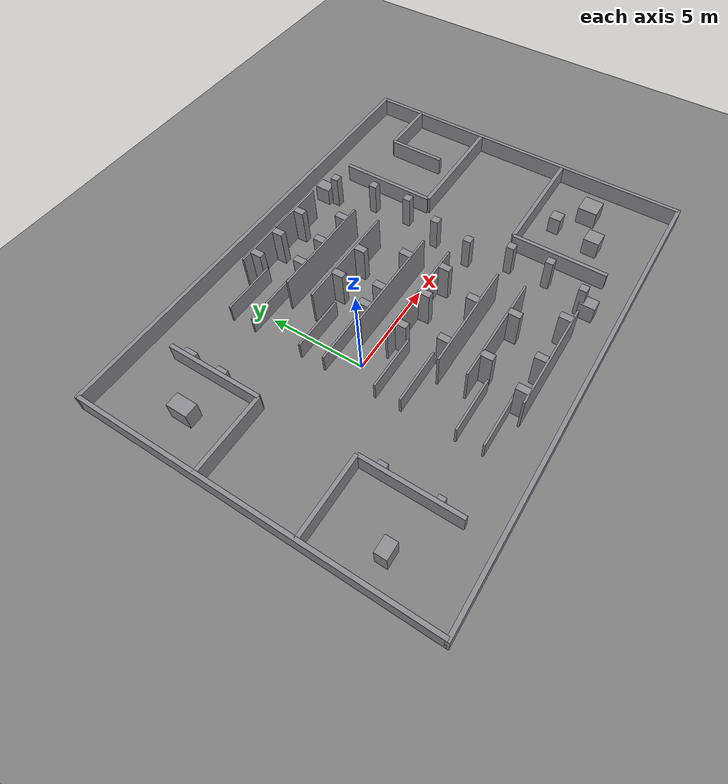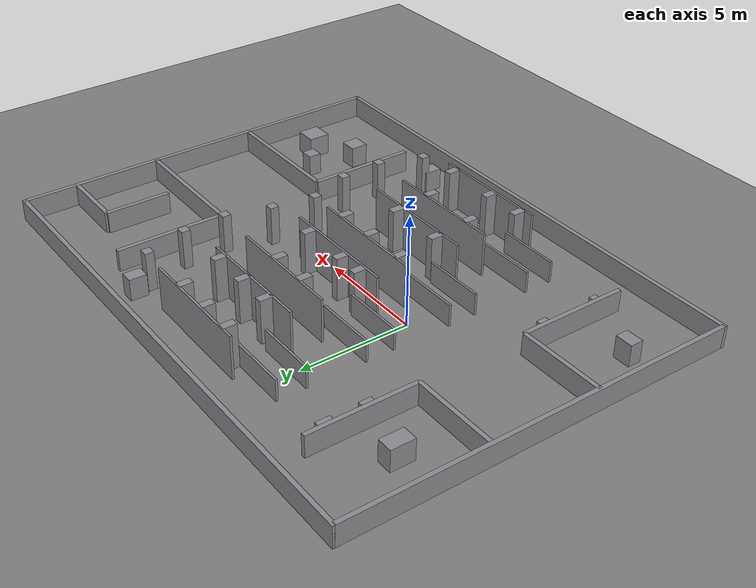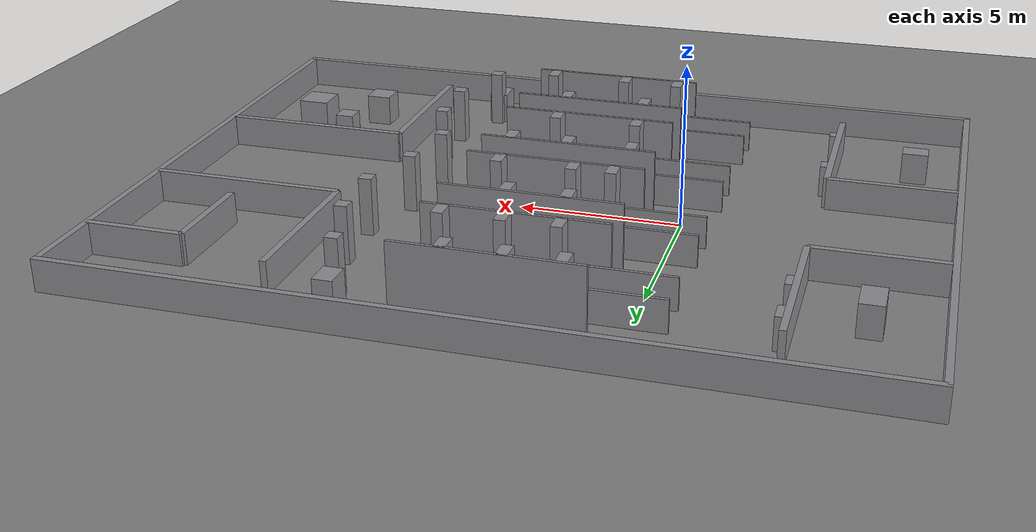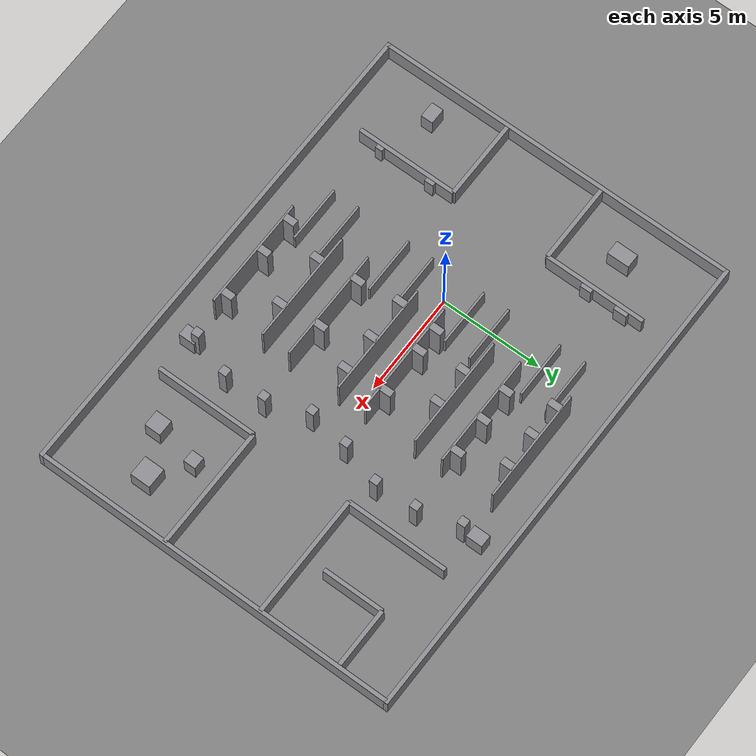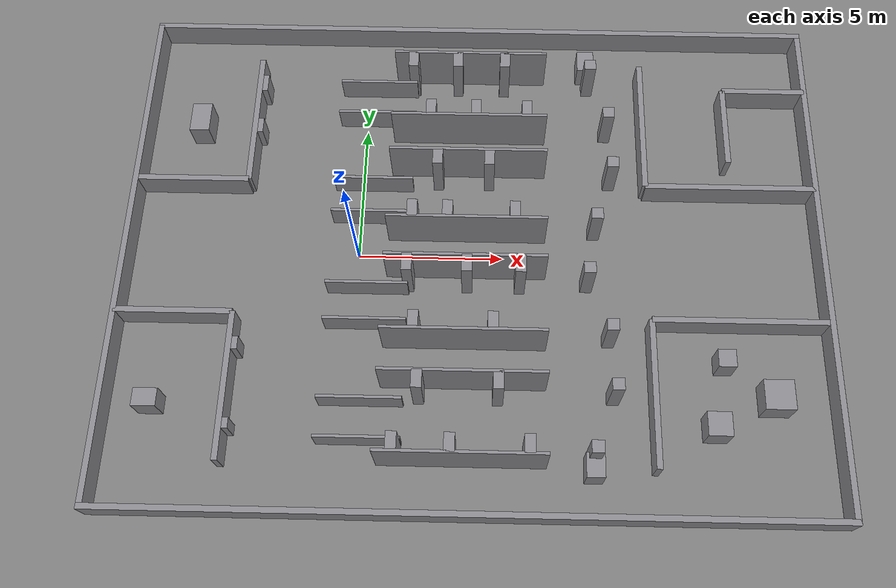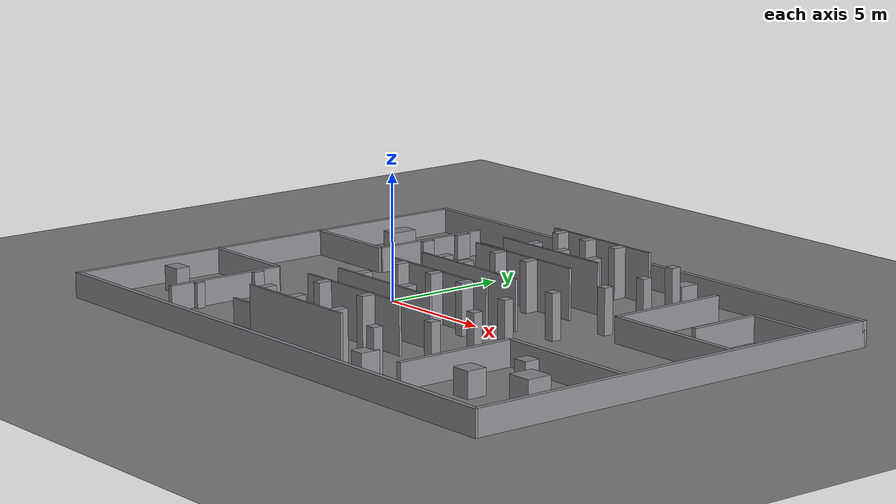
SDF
<?xml version='1.0' encoding='utf-8'?>
<sdf version="1.8">
  <world name="coco_world">
    <physics name="default_physics" type="dart">
      <max_step_size>0.002</max_step_size>
      <real_time_factor>1.0</real_time_factor>
    </physics>
    <gravity>0 0 -9.8</gravity>
    <plugin filename="gz-sim-physics-system" name="gz::sim::systems::Physics" />
    <plugin filename="gz-sim-user-commands-system" name="gz::sim::systems::UserCommands" />
    <plugin filename="gz-sim-scene-broadcaster-system" name="gz::sim::systems::SceneBroadcaster" />
    <plugin filename="gz-sim-sensors-system" name="gz::sim::systems::Sensors">
      <render_engine>ogre2</render_engine>
    </plugin>
    <plugin filename="gz-sim-imu-system" name="gz::sim::systems::Imu" />
    <light name="sun" type="directional">
      <cast_shadows>true</cast_shadows>
      <pose>0 0 10 0 0 0</pose>
      <diffuse>0.9 0.9 0.9 1</diffuse>
      <specular>0.3 0.3 0.3 1</specular>
      <direction>-0.5 0.1 -0.9</direction>
    </light>
    <light name="fill" type="directional">
      <cast_shadows>false</cast_shadows>
      <pose>0 0 5 0 0 0</pose>
      <diffuse>0.4 0.4 0.4 1</diffuse>
      <direction>0.5 -0.1 -0.9</direction>
    </light>
    <model name="ground_plane">
      <static>true</static>
      <link name="link">
        <collision name="collision">
          <geometry>
            <plane>
              <normal>0 0 1</normal>
              <size>60 60</size>
            </plane>
          </geometry>
          <surface>
            <friction>
              <ode>
                <mu>1.0</mu>
                <mu2>1.0</mu2>
              </ode>
            </friction>
          </surface>
        </collision>
        <visual name="visual">
          <geometry>
            <plane>
              <normal>0 0 1</normal>
              <size>60 60</size>
            </plane>
          </geometry>
          <material>
            <ambient>0.5 0.5 0.5 1</ambient>
            <diffuse>0.5 0.5 0.5 1</diffuse>
          </material>
        </visual>
      </link>
    </model>
    <scene>
      <ambient>0.4 0.4 0.4 1</ambient>
      <background>0.53 0.81 0.92 1</background>
      <shadows>true</shadows>
    </scene>
    <model name="wall_north">
      <static>true</static>
      <pose>4 9 0.5 0 0 0</pose>
      <link name="link">
        <collision name="collision">
          <geometry>
            <box>
              <size>24.2 0.2 1</size>
            </box>
          </geometry>
        </collision>
        <visual name="visual">
          <geometry>
            <box>
              <size>24.2 0.2 1</size>
            </box>
          </geometry>
          <material>
            <ambient>0.55 0.55 0.57 1</ambient>
            <diffuse>0.55 0.55 0.57 1</diffuse>
          </material>
        </visual>
      </link>
    </model>
    <model name="wall_south">
      <static>true</static>
      <pose>4 -9 0.5 0 0 0</pose>
      <link name="link">
        <collision name="collision">
          <geometry>
            <box>
              <size>24.2 0.2 1</size>
            </box>
          </geometry>
        </collision>
        <visual name="visual">
          <geometry>
            <box>
              <size>24.2 0.2 1</size>
            </box>
          </geometry>
          <material>
            <ambient>0.55 0.55 0.57 1</ambient>
            <diffuse>0.55 0.55 0.57 1</diffuse>
          </material>
        </visual>
      </link>
    </model>
    <model name="wall_west">
      <static>true</static>
      <pose>-8 0 0.5 0 0 0</pose>
      <link name="link">
        <collision name="collision">
          <geometry>
            <box>
              <size>0.2 18 1</size>
            </box>
          </geometry>
        </collision>
        <visual name="visual">
          <geometry>
            <box>
              <size>0.2 18 1</size>
            </box>
          </geometry>
          <material>
            <ambient>0.55 0.55 0.57 1</ambient>
            <diffuse>0.55 0.55 0.57 1</diffuse>
          </material>
        </visual>
      </link>
    </model>
    <model name="wall_east">
      <static>true</static>
      <pose>16 0 0.5 0 0 0</pose>
      <link name="link">
        <collision name="collision">
          <geometry>
            <box>
              <size>0.2 18 1</size>
            </box>
          </geometry>
        </collision>
        <visual name="visual">
          <geometry>
            <box>
              <size>0.2 18 1</size>
            </box>
          </geometry>
          <material>
            <ambient>0.55 0.55 0.57 1</ambient>
            <diffuse>0.55 0.55 0.57 1</diffuse>
          </material>
        </visual>
      </link>
    </model>
    <model name="west_spine_south">
      <static>true</static>
      <pose>-4 -5 0.5 0 0 0</pose>
      <link name="link">
        <collision name="collision">
          <geometry>
            <box>
              <size>0.2 5 1</size>
            </box>
          </geometry>
        </collision>
        <visual name="visual">
          <geometry>
            <box>
              <size>0.2 5 1</size>
            </box>
          </geometry>
          <material>
            <ambient>0.55 0.55 0.57 1</ambient>
            <diffuse>0.55 0.55 0.57 1</diffuse>
          </material>
        </visual>
      </link>
    </model>
    <model name="west_spine_north">
      <static>true</static>
      <pose>-4 5 0.5 0 0 0</pose>
      <link name="link">
        <collision name="collision">
          <geometry>
            <box>
              <size>0.2 5 1</size>
            </box>
          </geometry>
        </collision>
        <visual name="visual">
          <geometry>
            <box>
              <size>0.2 5 1</size>
            </box>
          </geometry>
          <material>
            <ambient>0.55 0.55 0.57 1</ambient>
            <diffuse>0.55 0.55 0.57 1</diffuse>
          </material>
        </visual>
      </link>
    </model>
    <model name="west_room_south">
      <static>true</static>
      <pose>-6 -2.5 0.5 0 0 0</pose>
      <link name="link">
        <collision name="collision">
          <geometry>
            <box>
              <size>4 0.2 1</size>
            </box>
          </geometry>
        </collision>
        <visual name="visual">
          <geometry>
            <box>
              <size>4 0.2 1</size>
            </box>
          </geometry>
          <material>
            <ambient>0.55 0.55 0.57 1</ambient>
            <diffuse>0.55 0.55 0.57 1</diffuse>
          </material>
        </visual>
      </link>
    </model>
    <model name="west_room_north">
      <static>true</static>
      <pose>-6 2.5 0.5 0 0 0</pose>
      <link name="link">
        <collision name="collision">
          <geometry>
            <box>
              <size>4 0.2 1</size>
            </box>
          </geometry>
        </collision>
        <visual name="visual">
          <geometry>
            <box>
              <size>4 0.2 1</size>
            </box>
          </geometry>
          <material>
            <ambient>0.55 0.55 0.57 1</ambient>
            <diffuse>0.55 0.55 0.57 1</diffuse>
          </material>
        </visual>
      </link>
    </model>
    <model name="east_spine_south">
      <static>true</static>
      <pose>10 -5 0.5 0 0 0</pose>
      <link name="link">
        <collision name="collision">
          <geometry>
            <box>
              <size>0.2 5 1</size>
            </box>
          </geometry>
        </collision>
        <visual name="visual">
          <geometry>
            <box>
              <size>0.2 5 1</size>
            </box>
          </geometry>
          <material>
            <ambient>0.55 0.55 0.57 1</ambient>
            <diffuse>0.55 0.55 0.57 1</diffuse>
          </material>
        </visual>
      </link>
    </model>
    <model name="east_spine_north">
      <static>true</static>
      <pose>10 5 0.5 0 0 0</pose>
      <link name="link">
        <collision name="collision">
          <geometry>
            <box>
              <size>0.2 5 1</size>
            </box>
          </geometry>
        </collision>
        <visual name="visual">
          <geometry>
            <box>
              <size>0.2 5 1</size>
            </box>
          </geometry>
          <material>
            <ambient>0.55 0.55 0.57 1</ambient>
            <diffuse>0.55 0.55 0.57 1</diffuse>
          </material>
        </visual>
      </link>
    </model>
    <model name="east_room_south">
      <static>true</static>
      <pose>13 -2.5 0.5 0 0 0</pose>
      <link name="link">
        <collision name="collision">
          <geometry>
            <box>
              <size>6 0.2 1</size>
            </box>
          </geometry>
        </collision>
        <visual name="visual">
          <geometry>
            <box>
              <size>6 0.2 1</size>
            </box>
          </geometry>
          <material>
            <ambient>0.55 0.55 0.57 1</ambient>
            <diffuse>0.55 0.55 0.57 1</diffuse>
          </material>
        </visual>
      </link>
    </model>
    <model name="east_room_north">
      <static>true</static>
      <pose>13 2.5 0.5 0 0 0</pose>
      <link name="link">
        <collision name="collision">
          <geometry>
            <box>
              <size>6 0.2 1</size>
            </box>
          </geometry>
        </collision>
        <visual name="visual">
          <geometry>
            <box>
              <size>6 0.2 1</size>
            </box>
          </geometry>
          <material>
            <ambient>0.55 0.55 0.57 1</ambient>
            <diffuse>0.55 0.55 0.57 1</diffuse>
          </material>
        </visual>
      </link>
    </model>
    <model name="east_dead_end_side">
      <static>true</static>
      <pose>13 5 0.5 0 0 0</pose>
      <link name="link">
        <collision name="collision">
          <geometry>
            <box>
              <size>0.2 3 1</size>
            </box>
          </geometry>
        </collision>
        <visual name="visual">
          <geometry>
            <box>
              <size>0.2 3 1</size>
            </box>
          </geometry>
          <material>
            <ambient>0.55 0.55 0.57 1</ambient>
            <diffuse>0.55 0.55 0.57 1</diffuse>
          </material>
        </visual>
      </link>
    </model>
    <model name="east_dead_end_cap">
      <static>true</static>
      <pose>14.5 6.5 0.5 0 0 0</pose>
      <link name="link">
        <collision name="collision">
          <geometry>
            <box>
              <size>3 0.2 1</size>
            </box>
          </geometry>
        </collision>
        <visual name="visual">
          <geometry>
            <box>
              <size>3 0.2 1</size>
            </box>
          </geometry>
          <material>
            <ambient>0.55 0.55 0.57 1</ambient>
            <diffuse>0.55 0.55 0.57 1</diffuse>
          </material>
        </visual>
      </link>
    </model>
    <model name="cluster_a">
      <static>true</static>
      <pose>12 -6 0.5 0 0 0</pose>
      <link name="link">
        <collision name="collision">
          <geometry>
            <box>
              <size>0.8 0.8 1</size>
            </box>
          </geometry>
        </collision>
        <visual name="visual">
          <geometry>
            <box>
              <size>0.8 0.8 1</size>
            </box>
          </geometry>
          <material>
            <ambient>0.55 0.55 0.57 1</ambient>
            <diffuse>0.55 0.55 0.57 1</diffuse>
          </material>
        </visual>
      </link>
    </model>
    <model name="cluster_b">
      <static>true</static>
      <pose>14 -5 0.5 0 0 0</pose>
      <link name="link">
        <collision name="collision">
          <geometry>
            <box>
              <size>1 1 1</size>
            </box>
          </geometry>
        </collision>
        <visual name="visual">
          <geometry>
            <box>
              <size>1 1 1</size>
            </box>
          </geometry>
          <material>
            <ambient>0.55 0.55 0.57 1</ambient>
            <diffuse>0.55 0.55 0.57 1</diffuse>
          </material>
        </visual>
      </link>
    </model>
    <model name="cluster_c">
      <static>true</static>
      <pose>12.4 -3.8 0.5 0 0 0</pose>
      <link name="link">
        <collision name="collision">
          <geometry>
            <box>
              <size>0.6 0.6 1</size>
            </box>
          </geometry>
        </collision>
        <visual name="visual">
          <geometry>
            <box>
              <size>0.6 0.6 1</size>
            </box>
          </geometry>
          <material>
            <ambient>0.55 0.55 0.57 1</ambient>
            <diffuse>0.55 0.55 0.57 1</diffuse>
          </material>
        </visual>
      </link>
    </model>
    <model name="offset_north">
      <static>true</static>
      <pose>8 7.7 0.5 0 0 0</pose>
      <link name="link">
        <collision name="collision">
          <geometry>
            <box>
              <size>0.6 0.8 1</size>
            </box>
          </geometry>
        </collision>
        <visual name="visual">
          <geometry>
            <box>
              <size>0.6 0.8 1</size>
            </box>
          </geometry>
          <material>
            <ambient>0.55 0.55 0.57 1</ambient>
            <diffuse>0.55 0.55 0.57 1</diffuse>
          </material>
        </visual>
      </link>
    </model>
    <model name="offset_south">
      <static>true</static>
      <pose>8 -7.4 0.5 0 0 0</pose>
      <link name="link">
        <collision name="collision">
          <geometry>
            <box>
              <size>0.6 0.8 1</size>
            </box>
          </geometry>
        </collision>
        <visual name="visual">
          <geometry>
            <box>
              <size>0.6 0.8 1</size>
            </box>
          </geometry>
          <material>
            <ambient>0.55 0.55 0.57 1</ambient>
            <diffuse>0.55 0.55 0.57 1</diffuse>
          </material>
        </visual>
      </link>
    </model>
    <model name="west_landmark">
      <static>true</static>
      <pose>-6 5 0.5 0 0 0</pose>
      <link name="link">
        <collision name="collision">
          <geometry>
            <box>
              <size>0.7 1.1 1</size>
            </box>
          </geometry>
        </collision>
        <visual name="visual">
          <geometry>
            <box>
              <size>0.7 1.1 1</size>
            </box>
          </geometry>
          <material>
            <ambient>0.55 0.55 0.57 1</ambient>
            <diffuse>0.55 0.55 0.57 1</diffuse>
          </material>
        </visual>
      </link>
    </model>
    <model name="west_offset">
      <static>true</static>
      <pose>-6.5 -5.5 0.5 0 0 0</pose>
      <link name="link">
        <collision name="collision">
          <geometry>
            <box>
              <size>0.8 0.6 1</size>
            </box>
          </geometry>
        </collision>
        <visual name="visual">
          <geometry>
            <box>
              <size>0.8 0.6 1</size>
            </box>
          </geometry>
          <material>
            <ambient>0.55 0.55 0.57 1</ambient>
            <diffuse>0.55 0.55 0.57 1</diffuse>
          </material>
        </visual>
      </link>
    </model>
    <model name="red_bay_guard_south">
      <static>true</static>
      <pose>3.75 -7.3 1.0 0 0 0</pose>
      <link name="link">
        <collision name="collision">
          <geometry>
            <box>
              <size>5.5 0.1 2.0</size>
            </box>
          </geometry>
        </collision>
        <visual name="visual">
          <geometry>
            <box>
              <size>5.5 0.1 2.0</size>
            </box>
          </geometry>
          <material>
            <ambient>0.55 0.55 0.57 1</ambient>
            <diffuse>0.55 0.55 0.57 1</diffuse>
          </material>
        </visual>
      </link>
    </model>
    <model name="red_bay_guard_north">
      <static>true</static>
      <pose>3.75 -4.7 1.0 0 0 0</pose>
      <link name="link">
        <collision name="collision">
          <geometry>
            <box>
              <size>5.5 0.1 2.0</size>
            </box>
          </geometry>
        </collision>
        <visual name="visual">
          <geometry>
            <box>
              <size>5.5 0.1 2.0</size>
            </box>
          </geometry>
          <material>
            <ambient>0.55 0.55 0.57 1</ambient>
            <diffuse>0.55 0.55 0.57 1</diffuse>
          </material>
        </visual>
      </link>
    </model>
    <model name="green_bay_guard_south">
      <static>true</static>
      <pose>3.75 -3.3 1.0 0 0 0</pose>
      <link name="link">
        <collision name="collision">
          <geometry>
            <box>
              <size>5.5 0.1 2.0</size>
            </box>
          </geometry>
        </collision>
        <visual name="visual">
          <geometry>
            <box>
              <size>5.5 0.1 2.0</size>
            </box>
          </geometry>
          <material>
            <ambient>0.55 0.55 0.57 1</ambient>
            <diffuse>0.55 0.55 0.57 1</diffuse>
          </material>
        </visual>
      </link>
    </model>
    <model name="green_bay_guard_north">
      <static>true</static>
      <pose>3.75 -0.7 1.0 0 0 0</pose>
      <link name="link">
        <collision name="collision">
          <geometry>
            <box>
              <size>5.5 0.1 2.0</size>
            </box>
          </geometry>
        </collision>
        <visual name="visual">
          <geometry>
            <box>
              <size>5.5 0.1 2.0</size>
            </box>
          </geometry>
          <material>
            <ambient>0.55 0.55 0.57 1</ambient>
            <diffuse>0.55 0.55 0.57 1</diffuse>
          </material>
        </visual>
      </link>
    </model>
    <model name="blue_bay_guard_south">
      <static>true</static>
      <pose>3.75 0.7 1.0 0 0 0</pose>
      <link name="link">
        <collision name="collision">
          <geometry>
            <box>
              <size>5.5 0.1 2.0</size>
            </box>
          </geometry>
        </collision>
        <visual name="visual">
          <geometry>
            <box>
              <size>5.5 0.1 2.0</size>
            </box>
          </geometry>
          <material>
            <ambient>0.55 0.55 0.57 1</ambient>
            <diffuse>0.55 0.55 0.57 1</diffuse>
          </material>
        </visual>
      </link>
    </model>
    <model name="blue_bay_guard_north">
      <static>true</static>
      <pose>3.75 3.3 1.0 0 0 0</pose>
      <link name="link">
        <collision name="collision">
          <geometry>
            <box>
              <size>5.5 0.1 2.0</size>
            </box>
          </geometry>
        </collision>
        <visual name="visual">
          <geometry>
            <box>
              <size>5.5 0.1 2.0</size>
            </box>
          </geometry>
          <material>
            <ambient>0.55 0.55 0.57 1</ambient>
            <diffuse>0.55 0.55 0.57 1</diffuse>
          </material>
        </visual>
      </link>
    </model>
    <model name="yellow_bay_guard_south">
      <static>true</static>
      <pose>3.75 4.7 1.0 0 0 0</pose>
      <link name="link">
        <collision name="collision">
          <geometry>
            <box>
              <size>5.5 0.1 2.0</size>
            </box>
          </geometry>
        </collision>
        <visual name="visual">
          <geometry>
            <box>
              <size>5.5 0.1 2.0</size>
            </box>
          </geometry>
          <material>
            <ambient>0.55 0.55 0.57 1</ambient>
            <diffuse>0.55 0.55 0.57 1</diffuse>
          </material>
        </visual>
      </link>
    </model>
    <model name="yellow_bay_guard_north">
      <static>true</static>
      <pose>3.75 7.3 1.0 0 0 0</pose>
      <link name="link">
        <collision name="collision">
          <geometry>
            <box>
              <size>5.5 0.1 2.0</size>
            </box>
          </geometry>
        </collision>
        <visual name="visual">
          <geometry>
            <box>
              <size>5.5 0.1 2.0</size>
            </box>
          </geometry>
          <material>
            <ambient>0.55 0.55 0.57 1</ambient>
            <diffuse>0.55 0.55 0.57 1</diffuse>
          </material>
        </visual>
      </link>
    </model>
    <model name="red_approach_south">
      <static>true</static>
      <pose>0.4 -6.65 0.5 0 0 0</pose>
      <link name="link">
        <collision name="collision">
          <geometry>
            <box>
              <size>2.8 0.1 1</size>
            </box>
          </geometry>
        </collision>
        <visual name="visual">
          <geometry>
            <box>
              <size>2.8 0.1 1</size>
            </box>
          </geometry>
          <material>
            <ambient>0.55 0.55 0.57 1</ambient>
            <diffuse>0.55 0.55 0.57 1</diffuse>
          </material>
        </visual>
      </link>
    </model>
    <model name="red_approach_north">
      <static>true</static>
      <pose>0.4 -5.35 0.5 0 0 0</pose>
      <link name="link">
        <collision name="collision">
          <geometry>
            <box>
              <size>2.8 0.1 1</size>
            </box>
          </geometry>
        </collision>
        <visual name="visual">
          <geometry>
            <box>
              <size>2.8 0.1 1</size>
            </box>
          </geometry>
          <material>
            <ambient>0.55 0.55 0.57 1</ambient>
            <diffuse>0.55 0.55 0.57 1</diffuse>
          </material>
        </visual>
      </link>
    </model>
    <model name="green_approach_south">
      <static>true</static>
      <pose>0.4 -2.65 0.5 0 0 0</pose>
      <link name="link">
        <collision name="collision">
          <geometry>
            <box>
              <size>2.8 0.1 1</size>
            </box>
          </geometry>
        </collision>
        <visual name="visual">
          <geometry>
            <box>
              <size>2.8 0.1 1</size>
            </box>
          </geometry>
          <material>
            <ambient>0.55 0.55 0.57 1</ambient>
            <diffuse>0.55 0.55 0.57 1</diffuse>
          </material>
        </visual>
      </link>
    </model>
    <model name="green_approach_north">
      <static>true</static>
      <pose>0.4 -1.35 0.5 0 0 0</pose>
      <link name="link">
        <collision name="collision">
          <geometry>
            <box>
              <size>2.8 0.1 1</size>
            </box>
          </geometry>
        </collision>
        <visual name="visual">
          <geometry>
            <box>
              <size>2.8 0.1 1</size>
            </box>
          </geometry>
          <material>
            <ambient>0.55 0.55 0.57 1</ambient>
            <diffuse>0.55 0.55 0.57 1</diffuse>
          </material>
        </visual>
      </link>
    </model>
    <model name="blue_approach_south">
      <static>true</static>
      <pose>0.4 1.35 0.5 0 0 0</pose>
      <link name="link">
        <collision name="collision">
          <geometry>
            <box>
              <size>2.8 0.1 1</size>
            </box>
          </geometry>
        </collision>
        <visual name="visual">
          <geometry>
            <box>
              <size>2.8 0.1 1</size>
            </box>
          </geometry>
          <material>
            <ambient>0.55 0.55 0.57 1</ambient>
            <diffuse>0.55 0.55 0.57 1</diffuse>
          </material>
        </visual>
      </link>
    </model>
    <model name="blue_approach_north">
      <static>true</static>
      <pose>0.4 2.65 0.5 0 0 0</pose>
      <link name="link">
        <collision name="collision">
          <geometry>
            <box>
              <size>2.8 0.1 1</size>
            </box>
          </geometry>
        </collision>
        <visual name="visual">
          <geometry>
            <box>
              <size>2.8 0.1 1</size>
            </box>
          </geometry>
          <material>
            <ambient>0.55 0.55 0.57 1</ambient>
            <diffuse>0.55 0.55 0.57 1</diffuse>
          </material>
        </visual>
      </link>
    </model>
    <model name="yellow_approach_south">
      <static>true</static>
      <pose>0.4 5.35 0.5 0 0 0</pose>
      <link name="link">
        <collision name="collision">
          <geometry>
            <box>
              <size>2.8 0.1 1</size>
            </box>
          </geometry>
        </collision>
        <visual name="visual">
          <geometry>
            <box>
              <size>2.8 0.1 1</size>
            </box>
          </geometry>
          <material>
            <ambient>0.55 0.55 0.57 1</ambient>
            <diffuse>0.55 0.55 0.57 1</diffuse>
          </material>
        </visual>
      </link>
    </model>
    <model name="yellow_approach_north">
      <static>true</static>
      <pose>0.4 6.65 0.5 0 0 0</pose>
      <link name="link">
        <collision name="collision">
          <geometry>
            <box>
              <size>2.8 0.1 1</size>
            </box>
          </geometry>
        </collision>
        <visual name="visual">
          <geometry>
            <box>
              <size>2.8 0.1 1</size>
            </box>
          </geometry>
          <material>
            <ambient>0.55 0.55 0.57 1</ambient>
            <diffuse>0.55 0.55 0.57 1</diffuse>
          </material>
        </visual>
      </link>
    </model>
    <model name="west_corridor_landmark_0">
      <static>true</static>
      <pose>-3.8 -6.3 0.5 0 0 0</pose>
      <link name="link">
        <collision name="collision">
          <geometry>
            <box>
              <size>0.2 0.35 1</size>
            </box>
          </geometry>
        </collision>
        <visual name="visual">
          <geometry>
            <box>
              <size>0.2 0.35 1</size>
            </box>
          </geometry>
          <material>
            <ambient>0.55 0.55 0.57 1</ambient>
            <diffuse>0.55 0.55 0.57 1</diffuse>
          </material>
        </visual>
      </link>
    </model>
    <model name="west_corridor_landmark_1">
      <static>true</static>
      <pose>-3.8 -3.6 0.5 0 0 0</pose>
      <link name="link">
        <collision name="collision">
          <geometry>
            <box>
              <size>0.2 0.44999999999999996 1</size>
            </box>
          </geometry>
        </collision>
        <visual name="visual">
          <geometry>
            <box>
              <size>0.2 0.44999999999999996 1</size>
            </box>
          </geometry>
          <material>
            <ambient>0.55 0.55 0.57 1</ambient>
            <diffuse>0.55 0.55 0.57 1</diffuse>
          </material>
        </visual>
      </link>
    </model>
    <model name="west_corridor_landmark_2">
      <static>true</static>
      <pose>-3.8 4.7 0.5 0 0 0</pose>
      <link name="link">
        <collision name="collision">
          <geometry>
            <box>
              <size>0.2 0.55 1</size>
            </box>
          </geometry>
        </collision>
        <visual name="visual">
          <geometry>
            <box>
              <size>0.2 0.55 1</size>
            </box>
          </geometry>
          <material>
            <ambient>0.55 0.55 0.57 1</ambient>
            <diffuse>0.55 0.55 0.57 1</diffuse>
          </material>
        </visual>
      </link>
    </model>
    <model name="west_corridor_landmark_3">
      <static>true</static>
      <pose>-3.8 6.5 0.5 0 0 0</pose>
      <link name="link">
        <collision name="collision">
          <geometry>
            <box>
              <size>0.2 0.65 1</size>
            </box>
          </geometry>
        </collision>
        <visual name="visual">
          <geometry>
            <box>
              <size>0.2 0.65 1</size>
            </box>
          </geometry>
          <material>
            <ambient>0.55 0.55 0.57 1</ambient>
            <diffuse>0.55 0.55 0.57 1</diffuse>
          </material>
        </visual>
      </link>
    </model>
    <model name="red_bay_landmark_south_0">
      <static>true</static>
      <pose>1.6 -7.0 1.0 0 0 0</pose>
      <link name="link">
        <collision name="collision">
          <geometry>
            <box>
              <size>0.35 0.6 2.0</size>
            </box>
          </geometry>
        </collision>
        <visual name="visual">
          <geometry>
            <box>
              <size>0.35 0.6 2.0</size>
            </box>
          </geometry>
          <material>
            <ambient>0.55 0.55 0.57 1</ambient>
            <diffuse>0.55 0.55 0.57 1</diffuse>
          </material>
        </visual>
      </link>
    </model>
    <model name="red_bay_landmark_south_1">
      <static>true</static>
      <pose>3.4 -7.0 1.0 0 0 0</pose>
      <link name="link">
        <collision name="collision">
          <geometry>
            <box>
              <size>0.35 0.6 2.0</size>
            </box>
          </geometry>
        </collision>
        <visual name="visual">
          <geometry>
            <box>
              <size>0.35 0.6 2.0</size>
            </box>
          </geometry>
          <material>
            <ambient>0.55 0.55 0.57 1</ambient>
            <diffuse>0.55 0.55 0.57 1</diffuse>
          </material>
        </visual>
      </link>
    </model>
    <model name="red_bay_landmark_south_2">
      <static>true</static>
      <pose>5.9 -7.0 1.0 0 0 0</pose>
      <link name="link">
        <collision name="collision">
          <geometry>
            <box>
              <size>0.35 0.6 2.0</size>
            </box>
          </geometry>
        </collision>
        <visual name="visual">
          <geometry>
            <box>
              <size>0.35 0.6 2.0</size>
            </box>
          </geometry>
          <material>
            <ambient>0.55 0.55 0.57 1</ambient>
            <diffuse>0.55 0.55 0.57 1</diffuse>
          </material>
        </visual>
      </link>
    </model>
    <model name="red_bay_landmark_north_0">
      <static>true</static>
      <pose>2.3 -5.0 1.0 0 0 0</pose>
      <link name="link">
        <collision name="collision">
          <geometry>
            <box>
              <size>0.35 0.6 2.0</size>
            </box>
          </geometry>
        </collision>
        <visual name="visual">
          <geometry>
            <box>
              <size>0.35 0.6 2.0</size>
            </box>
          </geometry>
          <material>
            <ambient>0.55 0.55 0.57 1</ambient>
            <diffuse>0.55 0.55 0.57 1</diffuse>
          </material>
        </visual>
      </link>
    </model>
    <model name="red_bay_landmark_north_1">
      <static>true</static>
      <pose>4.9 -5.0 1.0 0 0 0</pose>
      <link name="link">
        <collision name="collision">
          <geometry>
            <box>
              <size>0.35 0.6 2.0</size>
            </box>
          </geometry>
        </collision>
        <visual name="visual">
          <geometry>
            <box>
              <size>0.35 0.6 2.0</size>
            </box>
          </geometry>
          <material>
            <ambient>0.55 0.55 0.57 1</ambient>
            <diffuse>0.55 0.55 0.57 1</diffuse>
          </material>
        </visual>
      </link>
    </model>
    <model name="green_bay_landmark_south_0">
      <static>true</static>
      <pose>2.1 -3.0 1.0 0 0 0</pose>
      <link name="link">
        <collision name="collision">
          <geometry>
            <box>
              <size>0.35 0.6 2.0</size>
            </box>
          </geometry>
        </collision>
        <visual name="visual">
          <geometry>
            <box>
              <size>0.35 0.6 2.0</size>
            </box>
          </geometry>
          <material>
            <ambient>0.55 0.55 0.57 1</ambient>
            <diffuse>0.55 0.55 0.57 1</diffuse>
          </material>
        </visual>
      </link>
    </model>
    <model name="green_bay_landmark_south_1">
      <static>true</static>
      <pose>4.7 -3.0 1.0 0 0 0</pose>
      <link name="link">
        <collision name="collision">
          <geometry>
            <box>
              <size>0.35 0.6 2.0</size>
            </box>
          </geometry>
        </collision>
        <visual name="visual">
          <geometry>
            <box>
              <size>0.35 0.6 2.0</size>
            </box>
          </geometry>
          <material>
            <ambient>0.55 0.55 0.57 1</ambient>
            <diffuse>0.55 0.55 0.57 1</diffuse>
          </material>
        </visual>
      </link>
    </model>
    <model name="green_bay_landmark_north_0">
      <static>true</static>
      <pose>1.8 -1.0 1.0 0 0 0</pose>
      <link name="link">
        <collision name="collision">
          <geometry>
            <box>
              <size>0.35 0.6 2.0</size>
            </box>
          </geometry>
        </collision>
        <visual name="visual">
          <geometry>
            <box>
              <size>0.35 0.6 2.0</size>
            </box>
          </geometry>
          <material>
            <ambient>0.55 0.55 0.57 1</ambient>
            <diffuse>0.55 0.55 0.57 1</diffuse>
          </material>
        </visual>
      </link>
    </model>
    <model name="green_bay_landmark_north_1">
      <static>true</static>
      <pose>3.8 -1.0 1.0 0 0 0</pose>
      <link name="link">
        <collision name="collision">
          <geometry>
            <box>
              <size>0.35 0.6 2.0</size>
            </box>
          </geometry>
        </collision>
        <visual name="visual">
          <geometry>
            <box>
              <size>0.35 0.6 2.0</size>
            </box>
          </geometry>
          <material>
            <ambient>0.55 0.55 0.57 1</ambient>
            <diffuse>0.55 0.55 0.57 1</diffuse>
          </material>
        </visual>
      </link>
    </model>
    <model name="green_bay_landmark_north_2">
      <static>true</static>
      <pose>5.6 -1.0 1.0 0 0 0</pose>
      <link name="link">
        <collision name="collision">
          <geometry>
            <box>
              <size>0.35 0.6 2.0</size>
            </box>
          </geometry>
        </collision>
        <visual name="visual">
          <geometry>
            <box>
              <size>0.35 0.6 2.0</size>
            </box>
          </geometry>
          <material>
            <ambient>0.55 0.55 0.57 1</ambient>
            <diffuse>0.55 0.55 0.57 1</diffuse>
          </material>
        </visual>
      </link>
    </model>
    <model name="blue_bay_landmark_south_0">
      <static>true</static>
      <pose>1.9 1.0 1.0 0 0 0</pose>
      <link name="link">
        <collision name="collision">
          <geometry>
            <box>
              <size>0.35 0.6 2.0</size>
            </box>
          </geometry>
        </collision>
        <visual name="visual">
          <geometry>
            <box>
              <size>0.35 0.6 2.0</size>
            </box>
          </geometry>
          <material>
            <ambient>0.55 0.55 0.57 1</ambient>
            <diffuse>0.55 0.55 0.57 1</diffuse>
          </material>
        </visual>
      </link>
    </model>
    <model name="blue_bay_landmark_south_1">
      <static>true</static>
      <pose>3.1 1.0 1.0 0 0 0</pose>
      <link name="link">
        <collision name="collision">
          <geometry>
            <box>
              <size>0.35 0.6 2.0</size>
            </box>
          </geometry>
        </collision>
        <visual name="visual">
          <geometry>
            <box>
              <size>0.35 0.6 2.0</size>
            </box>
          </geometry>
          <material>
            <ambient>0.55 0.55 0.57 1</ambient>
            <diffuse>0.55 0.55 0.57 1</diffuse>
          </material>
        </visual>
      </link>
    </model>
    <model name="blue_bay_landmark_south_2">
      <static>true</static>
      <pose>5.4 1.0 1.0 0 0 0</pose>
      <link name="link">
        <collision name="collision">
          <geometry>
            <box>
              <size>0.35 0.6 2.0</size>
            </box>
          </geometry>
        </collision>
        <visual name="visual">
          <geometry>
            <box>
              <size>0.35 0.6 2.0</size>
            </box>
          </geometry>
          <material>
            <ambient>0.55 0.55 0.57 1</ambient>
            <diffuse>0.55 0.55 0.57 1</diffuse>
          </material>
        </visual>
      </link>
    </model>
    <model name="blue_bay_landmark_north_0">
      <static>true</static>
      <pose>2.7 3.0 1.0 0 0 0</pose>
      <link name="link">
        <collision name="collision">
          <geometry>
            <box>
              <size>0.35 0.6 2.0</size>
            </box>
          </geometry>
        </collision>
        <visual name="visual">
          <geometry>
            <box>
              <size>0.35 0.6 2.0</size>
            </box>
          </geometry>
          <material>
            <ambient>0.55 0.55 0.57 1</ambient>
            <diffuse>0.55 0.55 0.57 1</diffuse>
          </material>
        </visual>
      </link>
    </model>
    <model name="blue_bay_landmark_north_1">
      <static>true</static>
      <pose>4.5 3.0 1.0 0 0 0</pose>
      <link name="link">
        <collision name="collision">
          <geometry>
            <box>
              <size>0.35 0.6 2.0</size>
            </box>
          </geometry>
        </collision>
        <visual name="visual">
          <geometry>
            <box>
              <size>0.35 0.6 2.0</size>
            </box>
          </geometry>
          <material>
            <ambient>0.55 0.55 0.57 1</ambient>
            <diffuse>0.55 0.55 0.57 1</diffuse>
          </material>
        </visual>
      </link>
    </model>
    <model name="yellow_bay_landmark_south_0">
      <static>true</static>
      <pose>2.4 5.0 1.0 0 0 0</pose>
      <link name="link">
        <collision name="collision">
          <geometry>
            <box>
              <size>0.35 0.6 2.0</size>
            </box>
          </geometry>
        </collision>
        <visual name="visual">
          <geometry>
            <box>
              <size>0.35 0.6 2.0</size>
            </box>
          </geometry>
          <material>
            <ambient>0.55 0.55 0.57 1</ambient>
            <diffuse>0.55 0.55 0.57 1</diffuse>
          </material>
        </visual>
      </link>
    </model>
    <model name="yellow_bay_landmark_south_1">
      <static>true</static>
      <pose>4.0 5.0 1.0 0 0 0</pose>
      <link name="link">
        <collision name="collision">
          <geometry>
            <box>
              <size>0.35 0.6 2.0</size>
            </box>
          </geometry>
        </collision>
        <visual name="visual">
          <geometry>
            <box>
              <size>0.35 0.6 2.0</size>
            </box>
          </geometry>
          <material>
            <ambient>0.55 0.55 0.57 1</ambient>
            <diffuse>0.55 0.55 0.57 1</diffuse>
          </material>
        </visual>
      </link>
    </model>
    <model name="yellow_bay_landmark_south_2">
      <static>true</static>
      <pose>5.8 5.0 1.0 0 0 0</pose>
      <link name="link">
        <collision name="collision">
          <geometry>
            <box>
              <size>0.35 0.6 2.0</size>
            </box>
          </geometry>
        </collision>
        <visual name="visual">
          <geometry>
            <box>
              <size>0.35 0.6 2.0</size>
            </box>
          </geometry>
          <material>
            <ambient>0.55 0.55 0.57 1</ambient>
            <diffuse>0.55 0.55 0.57 1</diffuse>
          </material>
        </visual>
      </link>
    </model>
    <model name="yellow_bay_landmark_north_0">
      <static>true</static>
      <pose>1.7 7.0 1.0 0 0 0</pose>
      <link name="link">
        <collision name="collision">
          <geometry>
            <box>
              <size>0.35 0.6 2.0</size>
            </box>
          </geometry>
        </collision>
        <visual name="visual">
          <geometry>
            <box>
              <size>0.35 0.6 2.0</size>
            </box>
          </geometry>
          <material>
            <ambient>0.55 0.55 0.57 1</ambient>
            <diffuse>0.55 0.55 0.57 1</diffuse>
          </material>
        </visual>
      </link>
    </model>
    <model name="yellow_bay_landmark_north_1">
      <static>true</static>
      <pose>3.3 7.0 1.0 0 0 0</pose>
      <link name="link">
        <collision name="collision">
          <geometry>
            <box>
              <size>0.35 0.6 2.0</size>
            </box>
          </geometry>
        </collision>
        <visual name="visual">
          <geometry>
            <box>
              <size>0.35 0.6 2.0</size>
            </box>
          </geometry>
          <material>
            <ambient>0.55 0.55 0.57 1</ambient>
            <diffuse>0.55 0.55 0.57 1</diffuse>
          </material>
        </visual>
      </link>
    </model>
    <model name="yellow_bay_landmark_north_2">
      <static>true</static>
      <pose>5.0 7.0 1.0 0 0 0</pose>
      <link name="link">
        <collision name="collision">
          <geometry>
            <box>
              <size>0.35 0.6 2.0</size>
            </box>
          </geometry>
        </collision>
        <visual name="visual">
          <geometry>
            <box>
              <size>0.35 0.6 2.0</size>
            </box>
          </geometry>
          <material>
            <ambient>0.55 0.55 0.57 1</ambient>
            <diffuse>0.55 0.55 0.57 1</diffuse>
          </material>
        </visual>
      </link>
    </model>
    <model name="red_exit_column_south">
      <static>true</static>
      <pose>8.0 -7.0 0.9 0 0 0</pose>
      <link name="link">
        <collision name="collision">
          <geometry>
            <box>
              <size>0.4 0.4 1.8</size>
            </box>
          </geometry>
        </collision>
        <visual name="visual">
          <geometry>
            <box>
              <size>0.4 0.4 1.8</size>
            </box>
          </geometry>
          <material>
            <ambient>0.55 0.55 0.57 1</ambient>
            <diffuse>0.55 0.55 0.57 1</diffuse>
          </material>
        </visual>
      </link>
    </model>
    <model name="red_exit_column_north">
      <static>true</static>
      <pose>8.7 -5.0 0.9 0 0 0</pose>
      <link name="link">
        <collision name="collision">
          <geometry>
            <box>
              <size>0.4 0.4 1.8</size>
            </box>
          </geometry>
        </collision>
        <visual name="visual">
          <geometry>
            <box>
              <size>0.4 0.4 1.8</size>
            </box>
          </geometry>
          <material>
            <ambient>0.55 0.55 0.57 1</ambient>
            <diffuse>0.55 0.55 0.57 1</diffuse>
          </material>
        </visual>
      </link>
    </model>
    <model name="green_exit_column_south">
      <static>true</static>
      <pose>8.6 -3.0 0.9 0 0 0</pose>
      <link name="link">
        <collision name="collision">
          <geometry>
            <box>
              <size>0.4 0.4 1.8</size>
            </box>
          </geometry>
        </collision>
        <visual name="visual">
          <geometry>
            <box>
              <size>0.4 0.4 1.8</size>
            </box>
          </geometry>
          <material>
            <ambient>0.55 0.55 0.57 1</ambient>
            <diffuse>0.55 0.55 0.57 1</diffuse>
          </material>
        </visual>
      </link>
    </model>
    <model name="green_exit_column_north">
      <static>true</static>
      <pose>7.9 -1.0 0.9 0 0 0</pose>
      <link name="link">
        <collision name="collision">
          <geometry>
            <box>
              <size>0.4 0.4 1.8</size>
            </box>
          </geometry>
        </collision>
        <visual name="visual">
          <geometry>
            <box>
              <size>0.4 0.4 1.8</size>
            </box>
          </geometry>
          <material>
            <ambient>0.55 0.55 0.57 1</ambient>
            <diffuse>0.55 0.55 0.57 1</diffuse>
          </material>
        </visual>
      </link>
    </model>
    <model name="blue_exit_column_south">
      <static>true</static>
      <pose>8.2 1.0 0.9 0 0 0</pose>
      <link name="link">
        <collision name="collision">
          <geometry>
            <box>
              <size>0.4 0.4 1.8</size>
            </box>
          </geometry>
        </collision>
        <visual name="visual">
          <geometry>
            <box>
              <size>0.4 0.4 1.8</size>
            </box>
          </geometry>
          <material>
            <ambient>0.55 0.55 0.57 1</ambient>
            <diffuse>0.55 0.55 0.57 1</diffuse>
          </material>
        </visual>
      </link>
    </model>
    <model name="blue_exit_column_north">
      <static>true</static>
      <pose>8.8 3.0 0.9 0 0 0</pose>
      <link name="link">
        <collision name="collision">
          <geometry>
            <box>
              <size>0.4 0.4 1.8</size>
            </box>
          </geometry>
        </collision>
        <visual name="visual">
          <geometry>
            <box>
              <size>0.4 0.4 1.8</size>
            </box>
          </geometry>
          <material>
            <ambient>0.55 0.55 0.57 1</ambient>
            <diffuse>0.55 0.55 0.57 1</diffuse>
          </material>
        </visual>
      </link>
    </model>
    <model name="yellow_exit_column_south">
      <static>true</static>
      <pose>8.7 5.0 0.9 0 0 0</pose>
      <link name="link">
        <collision name="collision">
          <geometry>
            <box>
              <size>0.4 0.4 1.8</size>
            </box>
          </geometry>
        </collision>
        <visual name="visual">
          <geometry>
            <box>
              <size>0.4 0.4 1.8</size>
            </box>
          </geometry>
          <material>
            <ambient>0.55 0.55 0.57 1</ambient>
            <diffuse>0.55 0.55 0.57 1</diffuse>
          </material>
        </visual>
      </link>
    </model>
    <model name="yellow_exit_column_north">
      <static>true</static>
      <pose>8.1 7.0 0.9 0 0 0</pose>
      <link name="link">
        <collision name="collision">
          <geometry>
            <box>
              <size>0.4 0.4 1.8</size>
            </box>
          </geometry>
        </collision>
        <visual name="visual">
          <geometry>
            <box>
              <size>0.4 0.4 1.8</size>
            </box>
          </geometry>
          <material>
            <ambient>0.55 0.55 0.57 1</ambient>
            <diffuse>0.55 0.55 0.57 1</diffuse>
          </material>
        </visual>
      </link>
    </model>
  </world>
</sdf>
